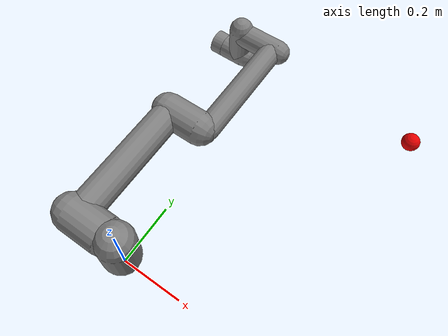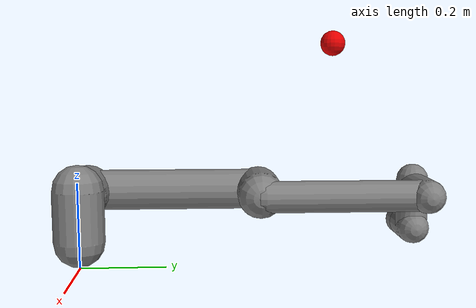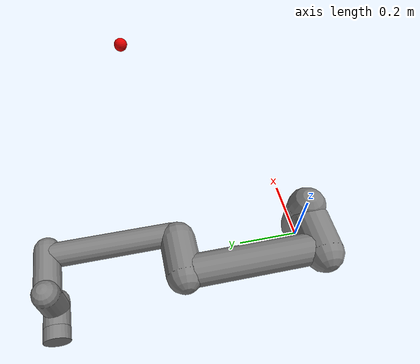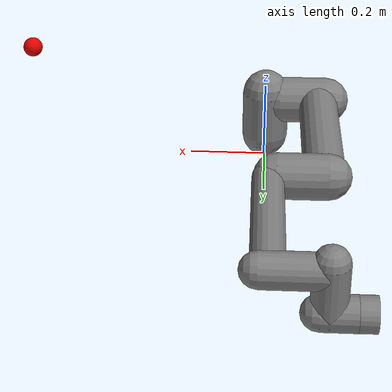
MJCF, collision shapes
<mujoco model="ur5e">
  <!--option collision="predefined"/-->
  <compiler angle="radian" meshdir="assets" autolimits="true"/>
  <!--compiler angle="radian" meshdir="assets"/-->
  <default>
    <joint axis="0 1 0" range="-6.28319 6.28319"/>
    <position ctrlrange="-6.2831 6.2831"/>

    <default class="visual">
      <geom type="mesh" contype="0" conaffinity="0" group="2"/>
    </default>
    <default class="collision">
      <geom type="capsule" group="3"/>
      <default class="eef_collision">
        <geom type="cylinder"/>
      </default>
    </default>
    <site size="0.001" rgba="0.5 0.5 0.5 0.3" group="4"/>

    <!-- Reference:
      https://www.universal-robots.com/articles/ur/robot-care-maintenance/max-joint-torques/ -->
    <default class="size3">
      <joint armature="0.1" damping="200"/>
      <position kp="3500" forcerange="-150 150"/>
      <default class="size3_limited">
        <joint range="-3.1415 3.1415"/>
        <position ctrlrange="-3.1415 3.1415"/>
      </default>
    </default>
    <default class="size1">
      <joint armature="0.1" damping="15"/>
      <position kp="3000" forcerange="-28 28"/>
    </default>
  </default>

  <asset>
    <material name="black" specular="0.5" shininess="0.25" rgba="0.033 0.033 0.033 1"/>
    <material name="jointgray" specular="0.5" shininess="0.25" rgba="0.278 0.278 0.278 1"/>
    <material name="linkgray" specular="0.5" shininess="0.25" rgba="0.82 0.82 0.82 1"/>
    <material name="urblue" specular="0.5" shininess="0.25" rgba="0.49 0.678 0.8 1"/>

    <mesh file="base_0.obj"/>
    <mesh file="base_1.obj"/>
    <mesh file="shoulder_0.obj"/>
    <mesh file="shoulder_1.obj"/>
    <mesh file="shoulder_2.obj"/>
    <mesh file="upperarm_0.obj"/>
    <mesh file="upperarm_1.obj"/>
    <mesh file="upperarm_2.obj"/>
    <mesh file="upperarm_3.obj"/>
    <mesh file="forearm_0.obj"/>
    <mesh file="forearm_1.obj"/>
    <mesh file="forearm_2.obj"/>
    <mesh file="forearm_3.obj"/>
    <mesh file="wrist1_0.obj"/>
    <mesh file="wrist1_1.obj"/>
    <mesh file="wrist1_2.obj"/>
    <mesh file="wrist2_0.obj"/>
    <mesh file="wrist2_1.obj"/>
    <mesh file="wrist2_2.obj"/>
    <mesh file="wrist3.obj"/>
  </asset>

  <worldbody>
    <light name="spotlight" mode="targetbodycom" target="wrist_2_link" pos="0 -1 2"/>
    <body name="base" quat="1 0 0 1">
      <inertial mass="4.0" pos="0 0 0" diaginertia="0.00443333156 0.00443333156 0.0072"/>
      <geom mesh="base_0" material="black" class="visual"/>
      <geom mesh="base_1" material="jointgray" class="visual"/>
      <body name="shoulder_link" pos="0 0 0.163">
        <inertial mass="3.7" pos="0 0 0" diaginertia="0.0102675 0.0102675 0.00666"/>
        <joint name="shoulder_pan_joint" class="size3" axis="0 0 1"/>
        <geom mesh="shoulder_0" material="urblue" class="visual"/>
        <geom mesh="shoulder_1" material="black" class="visual"/>
        <geom mesh="shoulder_2" material="jointgray" class="visual"/>
        <geom class="collision" size="0.06 0.06" pos="0 0 -0.04"/>
        <body name="upper_arm_link" pos="0 0.138 0" quat="1 0 1 0">
          <inertial mass="8.393" pos="0 0 0.2125" diaginertia="0.133886 0.133886 0.0151074"/>
          <joint name="shoulder_lift_joint" class="size3"/>
          <geom mesh="upperarm_0" material="linkgray" class="visual"/>
          <geom mesh="upperarm_1" material="black" class="visual"/>
          <geom mesh="upperarm_2" material="jointgray" class="visual"/>
          <geom mesh="upperarm_3" material="urblue" class="visual"/>
          <geom class="collision" pos="0 -0.04 0" quat="1 1 0 0" size="0.06 0.06"/>
          <geom class="collision" size="0.05 0.2" pos="0 0 0.2"/>
          <body name="forearm_link" pos="0 -0.131 0.425">
            <inertial mass="2.275" pos="0 0 0.196" diaginertia="0.0311796 0.0311796 0.004095"/>
            <joint name="elbow_joint" class="size3_limited"/>
            <geom mesh="forearm_0" material="urblue" class="visual"/>
            <geom mesh="forearm_1" material="linkgray" class="visual"/>
            <geom mesh="forearm_2" material="black" class="visual"/>
            <geom mesh="forearm_3" material="jointgray" class="visual"/>
            <geom class="collision" pos="0 0.08 0" quat="1 1 0 0" size="0.055 0.06"/>
            <geom class="collision" size="0.038 0.19" pos="0 0 0.2"/>
            <body name="wrist_1_link" pos="0 0 0.392" quat="1 0 1 0">
              <inertial mass="1.219" pos="0 0.127 0" diaginertia="0.0025599 0.0025599 0.0021942"/>
              <joint name="wrist_1_joint" class="size1"/>
              <geom mesh="wrist1_0" material="black" class="visual"/>
              <geom mesh="wrist1_1" material="urblue" class="visual"/>
              <geom mesh="wrist1_2" material="jointgray" class="visual"/>
              <geom class="collision" pos="0 0.05 0" quat="1 1 0 0" size="0.04 0.07"/>
              <body name="wrist_2_link" pos="0 0.127 0">
                <inertial mass="1.219" pos="0 0 0.1" diaginertia="0.0025599 0.0025599 0.0021942"/>
                <joint name="wrist_2_joint" axis="0 0 1" class="size1"/>
                <geom mesh="wrist2_0" material="black" class="visual"/>
                <geom mesh="wrist2_1" material="urblue" class="visual"/>
                <geom mesh="wrist2_2" material="jointgray" class="visual"/>
                <geom class="collision" size="0.04 0.06" pos="0 0 0.04"/>
                <geom class="collision" pos="0 0.02 0.1" quat="1 1 0 0" size="0.04 0.04"/>
                <body name="wrist_3_link" pos="0 0 0.1">
                  <inertial mass="0.1889" pos="0 0.0771683 0" quat="1 0 0 1" diaginertia="0.000132134 9.90863e-05 9.90863e-05"/>
                  <joint name="wrist_3_joint" class="size1"/>
                  <geom material="linkgray" mesh="wrist3" class="visual"/>
                  <geom class="eef_collision" pos="0 0.08 0" quat="1 1 0 0" size="0.04 0.02"/>
                  <site name="attachment_site" pos="0 0.1 0" quat="-1 1 0 0"/>
                </body>
              </body>
            </body>
          </body>
        </body>
      </body>
    </body>
    <body name="target" pos="0.5 0.5 0.5" euler="0 0 0">
      <geom name="target" type="sphere" size=".02" rgba=".9 0 0 1" class="visual"/>
      <site name="tip4" size="0.1" pos="0 0 0" class="visual"/>
    </body>
  </worldbody>

  <actuator>
    <motor name="shoulder_pan"  joint="shoulder_pan_joint"  gear="1" ctrllimited="true" ctrlrange="-150 150" forcelimited="true" forcerange="-150 150"/>
    <motor name="shoulder_lift" joint="shoulder_lift_joint" gear="1" ctrllimited="true" ctrlrange="-150 150" forcelimited="true" forcerange="-150 150"/>
    <motor name="elbow"         joint="elbow_joint"         gear="1" ctrllimited="true" ctrlrange="-150 150" forcelimited="true" forcerange="-150 150"/>
    <motor name="wrist_1"  joint="wrist_1_joint"  gear="1" ctrllimited="true" ctrlrange="-28 28" forcelimited="true" forcerange="-28 28"/>
    <motor name="wrist_2"  joint="wrist_2_joint"  gear="1" ctrllimited="true" ctrlrange="-28 28" forcelimited="true" forcerange="-28 28"/>
    <motor name="wrist_3"  joint="wrist_3_joint"  gear="1" ctrllimited="true" ctrlrange="-28 28" forcelimited="true" forcerange="-28 28"/>
  </actuator>

  <sensor>
    <framepos objtype="site" objname="attachment_site"/>
    <framepos objtype="site" objname="tip4"/>
  </sensor>

  <keyframe>
    <key name="home" qpos="-1.5708 -1.5708 1.5708 -1.5708 -1.5708 0"
        ctrl="-1.5708 -1.5708 1.5708 -1.5708 -1.5708 0"/>
  </keyframe>
</mujoco>
